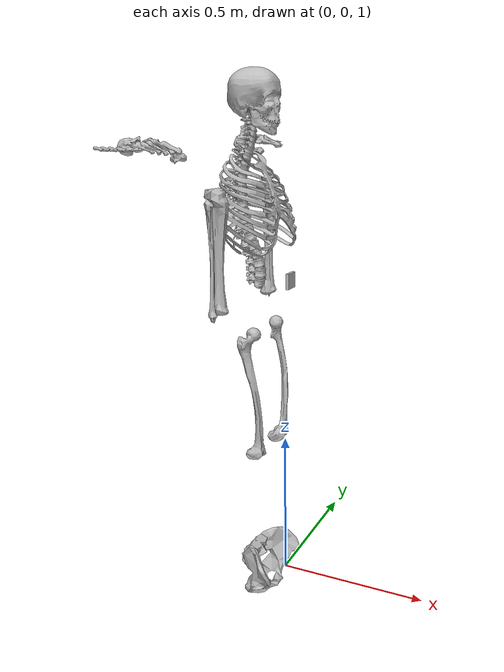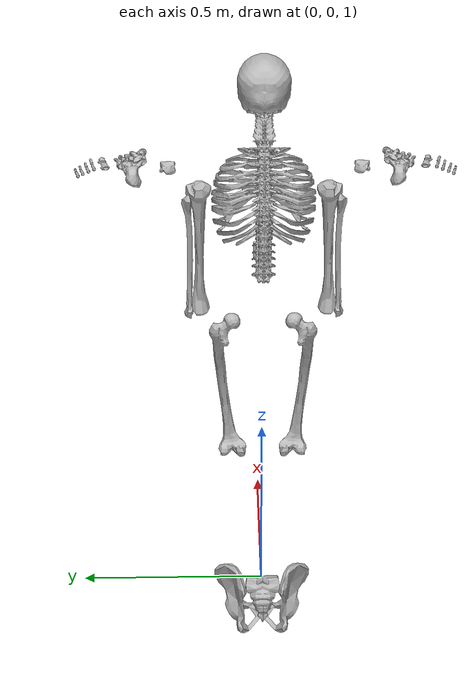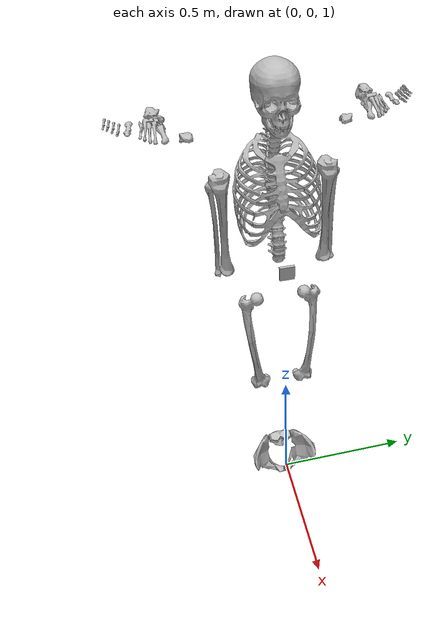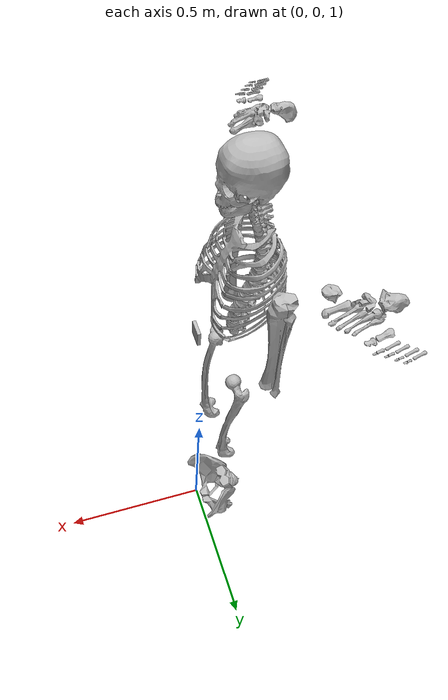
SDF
<?xml version="1.0" ?>
<sdf version="1.6">
	<model name="body">
		<pose frame="ground">0 0 0.05 0 0 0</pose>
		<!--============================== Links ====================================-->
		<link name="pelvis">
			<pose frame="body">0.   0.   0.95 0.   0.   0.  </pose>
			<inertial>
				<mass>11.777</mass>
				<pose>-0.0707 -0.      0.      0.      0.      0.    </pose>
				<inertia>
					<ixx>0.1028</ixx>
					<iyy>0.0579</iyy>
					<izz>0.0871</izz>
					<ixy>0</ixy>
					<ixz>0</ixz>
					<iyz>0</iyz>
				</inertia>
			</inertial>
			<collision name="col_pelvis">
				<pose>0 0 0 0 0 0</pose>
				<geometry>
					<mesh>
						<uri>model://body/meshes/pelvis_col.dae</uri>
						<scale> 1 1 1</scale>
					</mesh>
				</geometry>
				<surface>
					<contact>
						<opensim>
							<stiffness>1.1e10</stiffness>
						</opensim>
					</contact>
				</surface>
			</collision>
			<visual name="pelvis-sacrum-vis">
				<pose>-0.  0.  0.  0. -0.  0.</pose>
				<geometry>
					<mesh>
						<uri>model://body/meshes/sacrum.dae</uri>
						<scale> 1 1 1</scale>
					</mesh>
				</geometry>
			</visual>
			<visual name="pelvis-pelvis-vis">
				<pose>-0.  0.  0.  0. -0.  0.</pose>
				<geometry>
					<mesh>
						<uri>model://body/meshes/pelvis.dae</uri>
						<scale> 1 1 1</scale>
					</mesh>
				</geometry>
			</visual>
			<visual name="pelvis-l_pelvis-vis">
				<pose>-0.  0.  0.  0. -0.  0.</pose>
				<geometry>
					<mesh>
						<uri>model://body/meshes/l_pelvis.dae</uri>
						<scale> 1 1 1</scale>
					</mesh>
				</geometry>
			</visual>
		</link>
		<link name="femur_r">
			<pose frame="pelvis">-0.0707 -0.0835  0.8839  0.      0.      0.    </pose>
			<inertial>
				<mass>9.3014</mass>
				<pose> 0.   -0.   -0.17  0.    0.    0.  </pose>
				<inertia>
					<ixx>0.1339</ixx>
					<iyy>0.1412</iyy>
					<izz>0.0351</izz>
					<ixy>0</ixy>
					<ixz>0</ixz>
					<iyz>0</iyz>
				</inertia>
			</inertial>
			<collision name="col_femur_r">
				<pose>0 0 0 0 0 0</pose>
				<geometry>
					<mesh>
						<uri>model://body/meshes/femur_r_col.dae</uri>
						<scale> 1 1 1</scale>
					</mesh>
				</geometry>
			</collision>
			<visual name="femur_r-femur_r-vis">
				<pose>-0.  0.  0.  0. -0.  0.</pose>
				<geometry>
					<mesh>
						<uri>model://body/meshes/femur_r.dae</uri>
						<scale> 1 1 1</scale>
					</mesh>
				</geometry>
			</visual>
		</link>
		<link name="tibia_r">
			<pose frame="femur_r">-0.07479826 -0.0835      0.4879988   0.          0.          0.        </pose>
			<inertial>
				<mass>3.7075</mass>
				<pose> 0.     -0.     -0.1867  0.      0.      0.    </pose>
				<inertia>
					<ixx>0.0504</ixx>
					<iyy>0.0511</iyy>
					<izz>0.0051</izz>
					<ixy>0</ixy>
					<ixz>0</ixz>
					<iyz>0</iyz>
				</inertia>
			</inertial>
			<collision name="col_tibia_r">
				<pose>0 0 0 0 0 0</pose>
				<geometry>
					<mesh>
						<uri>model://body/meshes/tibia_r_col.dae</uri>
						<scale> 1 1 1</scale>
					</mesh>
				</geometry>
			</collision>
			<visual name="tibia_r-tibia_r-vis">
				<pose>-0.  0.  0.  0. -0.  0.</pose>
				<geometry>
					<mesh>
						<uri>model://body/meshes/tibia_r.dae</uri>
						<scale> 1 1 1</scale>
					</mesh>
				</geometry>
			</visual>
			<collision name="col_fibula_r">
				<pose>0 0 0 0 0 0</pose>
				<geometry>
					<mesh>
						<uri>model://body/meshes/fibula_r_col.dae</uri>
						<scale> 1 1 1</scale>
					</mesh>
				</geometry>
			</collision>
			<visual name="tibia_r-fibula-vis">
				<pose>-0.  0.  0.  0. -0.  0.</pose>
				<geometry>
					<mesh>
						<uri>model://body/meshes/fibula.dae</uri>
						<scale> 1 1 1</scale>
					</mesh>
				</geometry>
			</visual>
		</link>
		<link name="talus_r">
			<pose frame="tibia_r">-0.07479826 -0.0835      0.0579988   0.          0.          0.        </pose>
			<inertial>
				<mass>0.1</mass>
				<pose> 0. -0.  0.  0.  0.  0.</pose>
				<inertia>
					<ixx>0.001</ixx>
					<iyy>0.001</iyy>
					<izz>0.002</izz>
					<ixy>0</ixy>
					<ixz>0</ixz>
					<iyz>0</iyz>
				</inertia>
			</inertial>
			<visual name="talus_r-talus-vis">
				<pose>-0.  0.  0.  0. -0.  0.</pose>
				<geometry>
					<mesh>
						<uri>model://body/meshes/talus.dae</uri>
						<scale> 1 1 1</scale>
					</mesh>
				</geometry>
			</visual>
		</link>
		<link name="calcn_r">
			<pose frame="talus_r">-0.12356826 -0.09142     0.0160488   0.          0.          0.        </pose>
			<inertial>
				<mass>1.25</mass>
				<pose> 0.1  -0.    0.03  0.    0.    0.  </pose>
				<inertia>
					<ixx>0.0014</ixx>
					<iyy>0.0041</iyy>
					<izz>0.0039</izz>
					<ixy>0</ixy>
					<ixz>0</ixz>
					<iyz>0</iyz>
				</inertia>
			</inertial>
			<collision name="col_calcn_r">
				<pose>0 0 0 0 0 0</pose>
				<geometry>
					<mesh>
						<uri>model://body/meshes/r_foot_col.dae</uri>
						<scale> 1 1 1</scale>
					</mesh>
				</geometry>
				<surface>
					<contact>
						<opensim>
							<stiffness>1.1e10</stiffness>
						</opensim>
					</contact>
				</surface>
			</collision>
			<visual name="calcn_r-foot-vis">
				<pose>-0.  0.  0.  0. -0.  0.</pose>
				<geometry>
					<mesh>
						<uri>model://body/meshes/foot.dae</uri>
						<scale> 1 1 1</scale>
					</mesh>
				</geometry>
			</visual>
		</link>
		<link name="toes_r">
			<pose frame="calcn_r"> 0.05523174 -0.0925      0.0140488   0.          0.          0.        </pose>
			<inertial>
				<mass>0.2166</mass>
				<pose>0.0346 0.0175 0.006  0.     0.     0.    </pose>
				<inertia>
					<ixx>0.0001</ixx>
					<iyy>0.0001</iyy>
					<izz>0.0002</izz>
					<ixy>0</ixy>
					<ixz>0</ixz>
					<iyz>0</iyz>
				</inertia>
			</inertial>
			<collision name="col_toes_r">
				<pose>0 0 0 0 0 0</pose>
				<geometry>
					<mesh>
						<uri>model://body/meshes/r_bofoot_col.dae</uri>
						<scale> 1 1 1</scale>
					</mesh>
				</geometry>
				<surface>
					<contact>
						<opensim>
							<stiffness>1.1e10</stiffness>
						</opensim>
					</contact>
				</surface>
			</collision>
			<visual name="toes_r-bofoot-vis">
				<pose>-0.  0.  0.  0. -0.  0.</pose>
				<geometry>
					<mesh>
						<uri>model://body/meshes/bofoot.dae</uri>
						<scale> 1 1 1</scale>
					</mesh>
				</geometry>
			</visual>
		</link>
		<link name="femur_l">
			<pose frame="pelvis">-0.0707  0.0835  0.8839  0.      0.      0.    </pose>
			<inertial>
				<mass>9.3014</mass>
				<pose> 0.   -0.   -0.17  0.    0.    0.  </pose>
				<inertia>
					<ixx>0.1339</ixx>
					<iyy>0.1412</iyy>
					<izz>0.0351</izz>
					<ixy>0</ixy>
					<ixz>0</ixz>
					<iyz>0</iyz>
				</inertia>
			</inertial>
			<visual name="femur_l-femur_l-vis">
				<pose>-0.  0.  0.  0. -0.  0.</pose>
				<geometry>
					<mesh>
						<uri>model://body/meshes/femur_l.dae</uri>
						<scale> 1 1 1</scale>
					</mesh>
				</geometry>
			</visual>
		</link>
		<link name="tibia_l">
			<pose frame="femur_l">-0.07479826  0.0835      0.4879988   0.          0.          0.        </pose>
			<inertial>
				<mass>3.7075</mass>
				<pose> 0.     -0.     -0.1867  0.      0.      0.    </pose>
				<inertia>
					<ixx>0.0504</ixx>
					<iyy>0.0511</iyy>
					<izz>0.0051</izz>
					<ixy>0</ixy>
					<ixz>0</ixz>
					<iyz>0</iyz>
				</inertia>
			</inertial>
			<collision name="col_tibia_l">
				<pose>0 0 0 0 0 0</pose>
				<geometry>
					<mesh>
						<uri>model://body/meshes/tibia_l_col.dae</uri>
						<scale> 1 1 1</scale>
					</mesh>
				</geometry>
			</collision>
			<visual name="tibia_l-tibia_l-vis">
				<pose>-0.  0.  0.  0. -0.  0.</pose>
				<geometry>
					<mesh>
						<uri>model://body/meshes/tibia_l.dae</uri>
						<scale> 1 1 1</scale>
					</mesh>
				</geometry>
			</visual>
			<collision name="col_fibula_l">
				<pose>0 0 0 0 0 0</pose>
				<geometry>
					<mesh>
						<uri>model://body/meshes/l_fibula_col.dae</uri>
						<scale> 1 1 1</scale>
					</mesh>
				</geometry>
			</collision>
			<visual name="tibia_l-l_fibula-vis">
				<pose>-0.  0.  0.  0. -0.  0.</pose>
				<geometry>
					<mesh>
						<uri>model://body/meshes/l_fibula.dae</uri>
						<scale> 1 1 1</scale>
					</mesh>
				</geometry>
			</visual>
		</link>
		<link name="talus_l">
			<pose frame="tibia_l">-0.07479826  0.0835      0.0579988   0.          0.          0.        </pose>
			<inertial>
				<mass>0.1</mass>
				<pose> 0. -0.  0.  0.  0.  0.</pose>
				<inertia>
					<ixx>0.001</ixx>
					<iyy>0.001</iyy>
					<izz>0.002</izz>
					<ixy>0</ixy>
					<ixz>0</ixz>
					<iyz>0</iyz>
				</inertia>
			</inertial>
			<visual name="talus_l-l_talus-vis">
				<pose>-0.  0.  0.  0. -0.  0.</pose>
				<geometry>
					<mesh>
						<uri>model://body/meshes/l_talus.dae</uri>
						<scale> 1 1 1</scale>
					</mesh>
				</geometry>
			</visual>
		</link>
		<link name="calcn_l">
			<pose frame="talus_l">-0.12356826  0.09142     0.0160488   0.          0.          0.        </pose>
			<inertial>
				<mass>1.25</mass>
				<pose> 0.1  -0.    0.03  0.    0.    0.  </pose>
				<inertia>
					<ixx>0.0014</ixx>
					<iyy>0.0041</iyy>
					<izz>0.0039</izz>
					<ixy>0</ixy>
					<ixz>0</ixz>
					<iyz>0</iyz>
				</inertia>
			</inertial>
			<collision name="col_calcn_l">
				<pose>0 0 0 0 0 0</pose>
				<geometry>
					<mesh>
						<uri>model://body/meshes/l_foot_col.dae</uri>
						<scale> 1 1 1</scale>
					</mesh>
				</geometry>
				<surface>
					<contact>
						<opensim>
							<stiffness>1.1e10</stiffness>
						</opensim>
					</contact>
				</surface>
			</collision>
			<visual name="calcn_l-l_foot-vis">
				<pose>-0.  0.  0.  0. -0.  0.</pose>
				<geometry>
					<mesh>
						<uri>model://body/meshes/l_foot.dae</uri>
						<scale> 1 1 1</scale>
					</mesh>
				</geometry>
			</visual>
		</link>
		<link name="toes_l">
			<pose frame="calcn_l">0.05523174 0.0925     0.0140488  0.         0.         0.        </pose>
			<inertial>
				<mass>0.2166</mass>
				<pose> 0.0346 -0.0175  0.006   0.      0.      0.    </pose>
				<inertia>
					<ixx>0.0001</ixx>
					<iyy>0.0001</iyy>
					<izz>0.0002</izz>
					<ixy>0</ixy>
					<ixz>0</ixz>
					<iyz>0</iyz>
				</inertia>
			</inertial>
			<collision name="col_toes_l">
				<pose>0 0 0 0 0 0</pose>
				<geometry>
					<mesh>
						<uri>model://body/meshes/l_bofoot_col.dae</uri>
						<scale> 1 1 1</scale>
					</mesh>
				</geometry>
				<surface>
					<contact>
						<opensim>
							<stiffness>1.1e10</stiffness>
						</opensim>
					</contact>
				</surface>
			</collision>
			<visual name="toes_l-l_bofoot-vis">
				<pose>-0.  0.  0.  0. -0.  0.</pose>
				<geometry>
					<mesh>
						<uri>model://body/meshes/l_bofoot.dae</uri>
						<scale> 1 1 1</scale>
					</mesh>
				</geometry>
			</visual>
		</link>
		<link name="ActiBelt_link">
			<pose frame="pelvis">0.02  0. 1.05  0.      0.      0.    </pose>
			<visual name="ActiBelt-vis">
				<geometry>
					<box>
						<size>0.01 0.05 0.05</size>
					</box>
				</geometry>
			</visual>
		</link>
		<link name="torso">
			<pose frame="pelvis">-0.1007  0.      1.0315  0.      0.      0.    </pose>
			<inertial>
				<mass>34.2366</mass>
				<pose>-0.03 -0.    0.32  0.    0.    0.  </pose>
				<inertia>
					<ixx>1.4745</ixx>
					<iyy>1.4314</iyy>
					<izz>0.7555</izz>
					<ixy>0</ixy>
					<ixz>0</ixz>
					<iyz>0</iyz>
				</inertia>
			</inertial>
			<collision name="col_torso_spine">
				<pose>0 0 0 0 0 0</pose>
				<geometry>
					<mesh>
						<uri>model://body/meshes/hat_spine_col.dae</uri>
						<scale> 1 1 1</scale>
					</mesh>
				</geometry>
			</collision>
			<visual name="torso-hat_spine-vis">
				<pose frame="pelvis">0 0 0 0 0 0</pose>
				<geometry>
					<mesh>
						<uri>model://body/meshes/hat_spine.dae</uri>
						<scale> 1 1 1</scale>
					</mesh>
				</geometry>
			</visual>
			<collision name="col_torso_jaw">
				<pose>0 0 0 0 0 0</pose>
				<geometry>
					<mesh>
						<uri>model://body/meshes/hat_jaw_col.dae</uri>
						<scale> 1 1 1</scale>
					</mesh>
				</geometry>
			</collision>
			<visual name="torso-hat_jaw-vis">
				<pose>-0.  0.  0.  0. -0.  0.</pose>
				<geometry>
					<mesh>
						<uri>model://body/meshes/hat_jaw.dae</uri>
						<scale> 1 1 1</scale>
					</mesh>
				</geometry>
			</visual>
			<collision name="col_torso_skull">
				<pose>0 0 0 0 0 0</pose>
				<geometry>
					<mesh>
						<uri>model://body/meshes/hat_skull_col.dae</uri>
						<scale> 1 1 1</scale>
					</mesh>

				</geometry>
			</collision>
			<visual name="torso-hat_skull-vis">
				<pose>-0.  0.  0.  0. -0.  0.</pose>
				<geometry>
					<mesh>
						<uri>model://body/meshes/hat_skull.dae</uri>
						<scale> 1 1 1</scale>
					</mesh>
				</geometry>
			</visual>
			<collision name="col_torso_ribs">
				<pose>0 0 0 0 0 0</pose>
				<geometry>
					<mesh>
						<uri>model://body/meshes/hat_ribs_col.dae</uri>
						<scale> 1 1 1</scale>
					</mesh>
				</geometry>
			</collision>
			<visual name="torso-hat_ribs-vis">
				<pose>-0.  0.  0.  0. -0.  0.</pose>
				<geometry>
					<mesh>
						<uri>model://body/meshes/hat_ribs.dae</uri>
						<scale> 1 1 1</scale>
					</mesh>
				</geometry>
			</visual>
		</link>
		<!--============================== Joints ===================================-->
		<joint name="ground_pelvis" type="prismatic">
			<parent>world</parent>
			<child>pelvis</child>
			<axis>
				<xyz>1 0 0</xyz>
			</axis>
		</joint>

		<joint name="hip_r" type="revolute">
			<parent>pelvis</parent>
			<child>femur_r</child>

			<axis>
				<xyz>0 1 0</xyz>
				<dynamics>
					<friction>0.01</friction>
					<damping>0.01</damping>
				</dynamics>

				<limit>
					<lower>-2.6</lower>
					<upper>1.57</upper>
				</limit>
			</axis>

		</joint>
		<joint name="knee_r" type="revolute">
			<parent>femur_r</parent>
			<child>tibia_r</child>
			<axis>
				<xyz>0 1 0</xyz>
				<dynamics>
					<friction>0.01</friction>
					<damping>0.01</damping>
				</dynamics>
				<limit>
					<lower>-0.1</lower>
					<upper>2.6</upper>
				</limit>
			</axis>
		</joint>
		<joint name="ankle_r" type="revolute">
			<parent>tibia_r</parent>
			<child>talus_r</child>
			<axis>
				<xyz>0 1 0</xyz>
				<dynamics>
					<friction>0.01</friction>
					<damping>0.01</damping>
				</dynamics>
				<limit>
					<lower>-0.5236</lower>
					<upper>0.7854</upper>
				</limit>
			</axis>
		</joint>
		<joint name="subtalar_r" type="fixed">
			<parent>talus_r</parent>
			<child>calcn_r</child>
		</joint>
		<joint name="mtp_r" type="fixed">
			<parent>calcn_r</parent>
			<child>toes_r</child>
		</joint>
		<joint name="hip_l" type="revolute">
			<parent>pelvis</parent>
			<child>femur_l</child>
			<axis>
				<xyz>0 1 0</xyz>
				<dynamics>
					<friction>0.01</friction>
					<damping>0.01</damping>
				</dynamics>
				<limit>
					<lower>-2.6</lower>
					<upper>1.57</upper>
				</limit>
			</axis>
		</joint>
		<joint name="knee_l" type="revolute">
			<parent>femur_l</parent>
			<child>tibia_l</child>
			<axis>
				<xyz>0 1 0</xyz>
				<dynamics>
					<friction>0.01</friction>
					<damping>0.01</damping>
				</dynamics>
				<limit>
					<lower>-0.1</lower>
					<upper>2.6</upper>
				</limit>
			</axis>
		</joint>
		<joint name="ankle_l" type="revolute">
			<parent>tibia_l</parent>
			<child>talus_l</child>
			<axis>
				<xyz>0 1 0</xyz>
				<dynamics>
					<friction>0.01</friction>
					<damping>0.01</damping>
				</dynamics>
				<limit>
					<lower>-0.5236</lower>
					<upper>0.7854</upper>
				</limit>
			</axis>
		</joint>
		<joint name="subtalar_l" type="fixed">
			<parent>talus_l</parent>
			<child>calcn_l</child>
		</joint>
		<joint name="mtp_l" type="fixed">
			<parent>calcn_l</parent>
			<child>toes_l</child>
		</joint>
		<joint name="ActBelt_jont" type="fixed">
			<parent>pelvis</parent>
			<child>ActiBelt_link</child>
		</joint>
		<joint name="back" type="fixed">
			<parent>pelvis</parent>
			<child>torso</child>
			<axis>
				<xyz>0 1 0</xyz>
				<dynamics>
					<friction>0.01</friction>
					<damping>0.01</damping>
				</dynamics>
				<limit>
					<lower>-0.5</lower>
					<upper>3.14</upper>
				</limit>
			</axis>
			<axis2>
				<xyz>1 0 0</xyz>
				<dynamics>
					<friction>0.01</friction>
					<damping>0.01</damping>
				</dynamics>
				<limit>
					<lower>-1.57</lower>
					<upper>1.57</upper>
				</limit>
			</axis2>
		</joint>
		<plugin filename="libgazebo_ros_imu.so" name="imu_plugin">
			<topicName>ActiBelt</topicName>
			<bodyName>ActiBelt_link</bodyName>
			<alwaysOn>true</alwaysOn>
			<updateRate>100</updateRate>
		</plugin>
		<!--============================== Muscles ===================================-->
		<muscles>model://body/body.osim</muscles>
		<plugin filename="libgazebo_ros_muscle_interface.so" name="muscle_interface_plugin"/>
		<!--============================== Includes ===============================-->
	</model>
</sdf>
